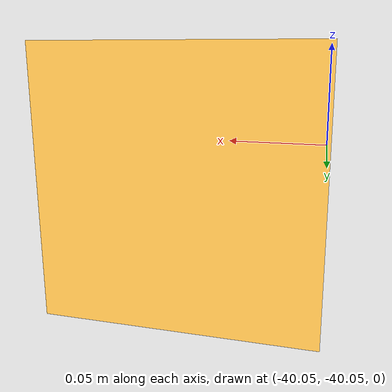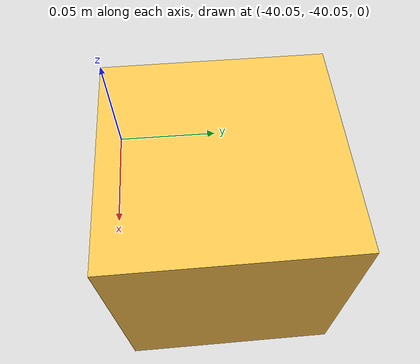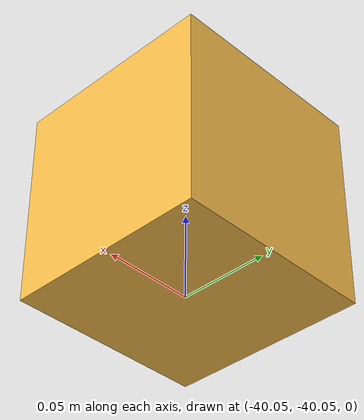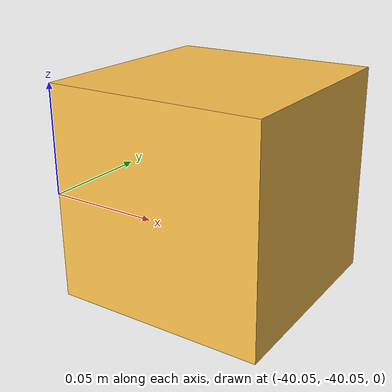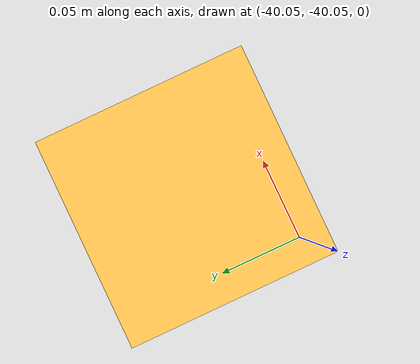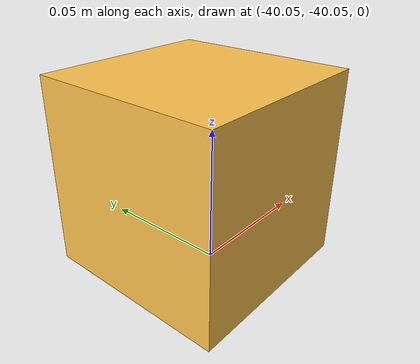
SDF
<?xml version='1.0'?>
<sdf version='1.6'>
  <model name='Rand_env_ddpg_1'>
    <link name='Wall'>
      <pose>-40 -40 0 0 0 0</pose>
      <self_collide>0</self_collide>
      <kinematic>0</kinematic>
      <inertial>
        <inertia>
          <ixx>nan</ixx>
          <ixy>0</ixy>
          <ixz>0</ixz>
          <iyy>nan</iyy>
          <iyz>0</iyz>
          <izz>nan</izz>
        </inertia>
        <mass>0</mass>
        <pose frame=''>0 0 0 0 0 0</pose>
      </inertial>
      <visual name='Wall_Visual'>
        <geometry>
          <box>
            <size>0.1 0.1 0.1</size>
          </box>
        </geometry>
        <material>
          <script>
            <uri>file://media/materials/scripts/gazebo.material</uri>
            <name>Gazebo/Grey</name>
          </script>
          <ambient>1 0.764706 0.305882 1</ambient>
          <shader type='pixel'/>
          <diffuse>0.7 0.7 0.7 1</diffuse>
          <specular>0.01 0.01 0.01 1</specular>
          <emissive>0 0 0 1</emissive>
        </material>
        <cast_shadows>1</cast_shadows>
        <transparency>0</transparency>
      </visual>
      <collision name='Wall_Collision'>
        <laser_retro>0</laser_retro>
        <max_contacts>10</max_contacts>
        <geometry>
          <box>
            <size>0.1 0.1 0.1</size>
          </box>
        </geometry>
        <surface>
          <friction>
            <ode>
              <mu>1</mu>
              <mu2>1</mu2>
              <fdir1>0 0 0</fdir1>
              <slip1>0</slip1>
              <slip2>0</slip2>
            </ode>
            <torsional>
              <coefficient>1</coefficient>
              <patch_radius>0</patch_radius>
              <surface_radius>0</surface_radius>
              <use_patch_radius>1</use_patch_radius>
              <ode>
                <slip>0</slip>
              </ode>
            </torsional>
          </friction>
          <bounce>
            <restitution_coefficient>0</restitution_coefficient>
            <threshold>1e+06</threshold>
          </bounce>
          <contact>
            <collide_without_contact>0</collide_without_contact>
            <collide_without_contact_bitmask>1</collide_without_contact_bitmask>
            <collide_bitmask>1</collide_bitmask>
            <ode>
              <soft_cfm>0</soft_cfm>
              <soft_erp>0.2</soft_erp>
              <kp>1e+13</kp>
              <kd>1</kd>
              <max_vel>0.01</max_vel>
              <min_depth>0</min_depth>
            </ode>
            <bullet>
              <split_impulse>1</split_impulse>
              <split_impulse_penetration_threshold>-0.01</split_impulse_penetration_threshold>
              <soft_cfm>0</soft_cfm>
              <soft_erp>0.2</soft_erp>
              <kp>1e+13</kp>
              <kd>1</kd>
            </bullet>
          </contact>
        </surface>
      </collision>
    </link>
    <static>1</static>
    <allow_auto_disable>1</allow_auto_disable>
  </model>
</sdf>
